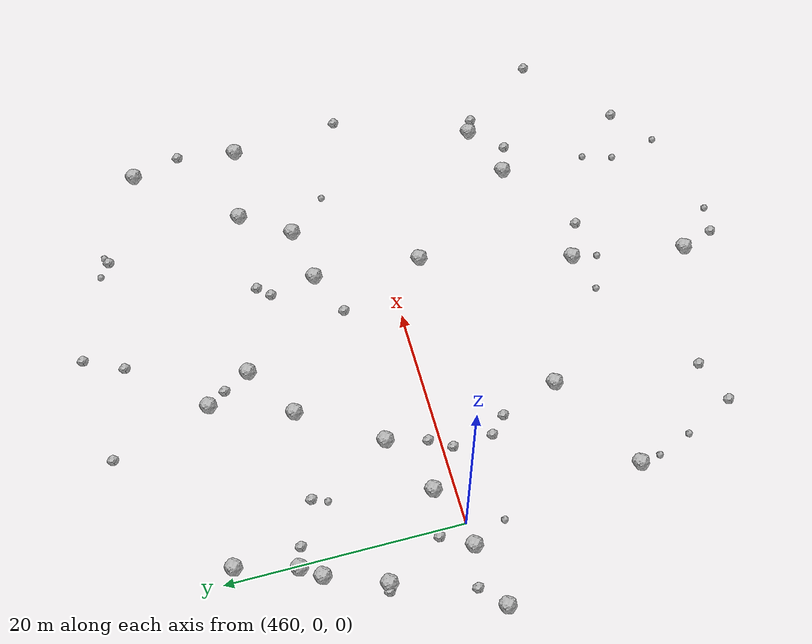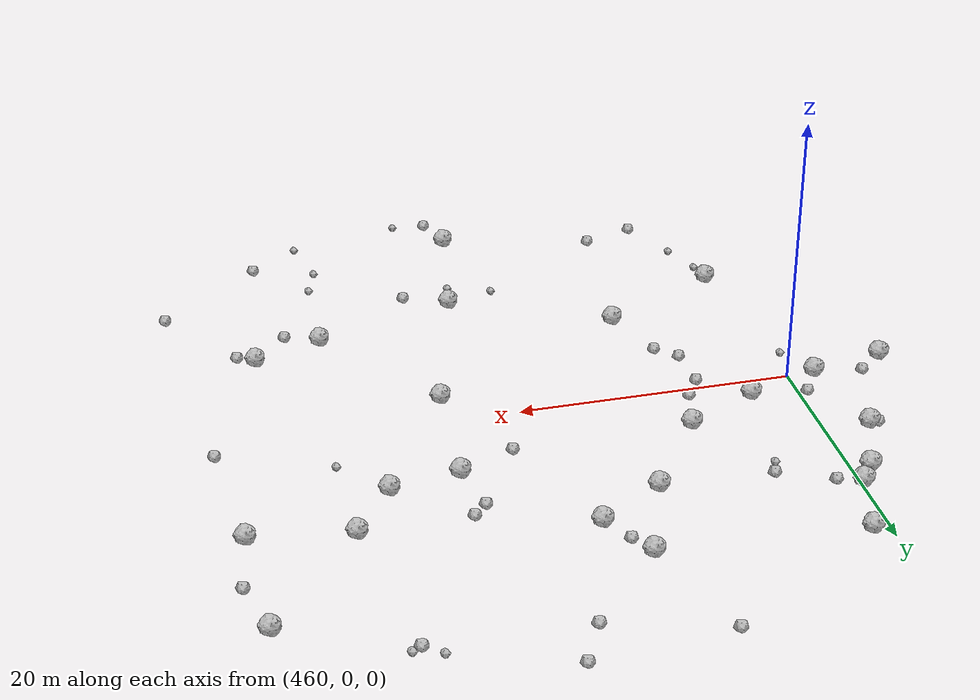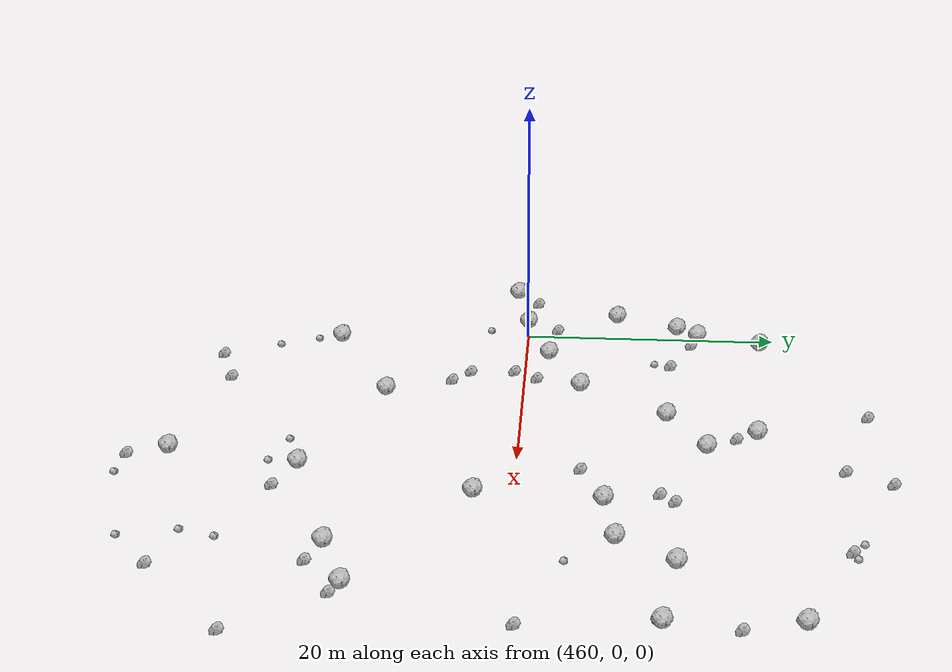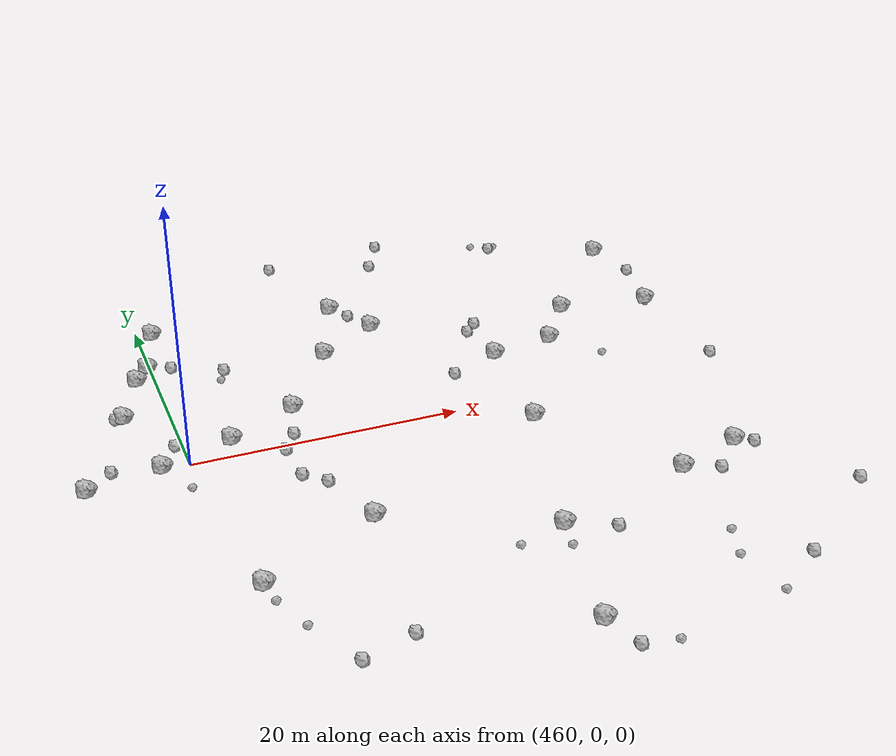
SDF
<sdf version="1.6">
 <world name="default">
  <include><uri>model://sun</uri></include>
  <model name="rock1_12_4">
   <include><uri>model://rock1</uri><pose>456.7264292609069 7.319533454608653 0.5 0 0 0</pose></include>
  </model>
  <model name="rock1_12_5">
   <include><uri>model://rock1</uri><pose>461.19431467303184 18.907294974549657 0.5 0 0 0</pose></include>
  </model>
  <model name="rock1_12_6">
   <include><uri>model://rock1</uri><pose>497.3364417436072 -11.054248393371285 0.5 0 0 0</pose></include>
  </model>
  <model name="rock1_12_7">
   <include><uri>model://rock1</uri><pose>458.04666392362617 -0.040673462632462076 0.5 0 0 0</pose></include>
  </model>
  <model name="rock1_12_8">
   <include><uri>model://rock1</uri><pose>463.5014657104561 1.8291215567332237 0.5 0 0 0</pose></include>
  </model>
  <model name="rock1_12_9">
   <include><uri>model://rock1</uri><pose>500.4168017479779 19.985080734108294 0.5 0 0 0</pose></include>
  </model>
  <model name="rock1_12_10">
   <include><uri>model://rock1</uri><pose>493.65804680320804 11.587392497280597 0.5 0 0 0</pose></include>
  </model>
  <model name="rock1_12_11">
   <include><uri>model://rock1</uri><pose>477.98916279361504 14.123073070528875 0.5 0 0 0</pose></include>
  </model>
  <model name="rock1_12_12">
   <include><uri>model://rock1</uri><pose>452.55646198732245 -1.1325628831853365 0.5 0 0 0</pose></include>
  </model>
  <model name="rock1_12_13">
   <include><uri>model://rock1</uri><pose>500.741585698031 10.50069452122667 0.5 0 0 0</pose></include>
  </model>
  <model name="rock1_12_14">
   <include><uri>model://rock1</uri><pose>470.2347863611097 -10.726118225778112 0.5 0 0 0</pose></include>
  </model>
  <model name="rock1_12_15">
   <include><uri>model://rock1</uri><pose>492.310026576079 -12.866408451020554 0.5 0 0 0</pose></include>
  </model>
  <model name="rock1_12_16">
   <include><uri>model://rock1</uri><pose>481.79483504755626 -16.10667858851373 0.5 0 0 0</pose></include>
  </model>
  <model name="rock1_12_17">
   <include><uri>model://rock1</uri><pose>459.8242630107495 13.883610405256462 0.5 0 0 0</pose></include>
  </model>
  <model name="rock1_12_18">
   <include><uri>model://rock1</uri><pose>473.2498740256 11.17375904245305 0.5 0 0 0</pose></include>
  </model>
  <model name="rock1_12_19">
   <include><uri>model://rock1</uri><pose>485.16273676756776 -2.943442993695477 0.5 0 0 0</pose></include>
  </model>
  <model name="rock1_12_20">
   <include><uri>model://rock1</uri><pose>458.67741860731496 12.244277386075062 0.5 0 0 0</pose></include>
  </model>
  <model name="rock1_12_21">
   <include><uri>model://rock1</uri><pose>468.78966327384165 4.470734326382214 0.5 0 0 0</pose></include>
  </model>
  <model name="rock1_12_22">
   <include><uri>model://rock1</uri><pose>475.7017608929265 18.000453171405972 0.5 0 0 0</pose></include>
  </model>
  <model name="rock1_12_23">
   <include><uri>model://rock1</uri><pose>490.7622322798723 7.331888559732683 0.5 0 0 0</pose></include>
  </model>
  <model name="rock1_12_24">
   <include><uri>model://rock1</uri><pose>461.33801659365815 -15.272621168414622 0.5 0 0 0</pose></include>
  </model>
  <model name="rock1_12_25">
   <include><uri>model://rock1</uri><pose>480.1317027578527 -26.045242297639568 0.5 0 0 0</pose></include>
  </model>
  <model name="rock1_12_26">
   <include><uri>model://rock1</uri><pose>485.7569788582924 6.492822749802407 0.5 0 0 0</pose></include>
  </model>
  <model name="rock2_12_0">
   <include><uri>model://rock2</uri><pose>482.68649928965726 27.513616786530584 0.3 0 0 0</pose></include>
  </model>
  <model name="rock2_12_1">
   <include><uri>model://rock2</uri><pose>461.520811432835 13.357823205556024 0.3 0 0 0</pose></include>
  </model>
  <model name="rock2_12_2">
   <include><uri>model://rock2</uri><pose>465.24694447449616 11.611593857044248 0.3 0 0 0</pose></include>
  </model>
  <model name="rock2_12_3">
   <include><uri>model://rock2</uri><pose>495.75029660715535 -24.593181722883816 0.3 0 0 0</pose></include>
  </model>
  <model name="rock2_12_4">
   <include><uri>model://rock2</uri><pose>501.61642811647476 0.8455183380250944 0.3 0 0 0</pose></include>
  </model>
  <model name="rock2_12_5">
   <include><uri>model://rock2</uri><pose>467.86250957669876 1.0278720403519763 0.3 0 0 0</pose></include>
  </model>
  <model name="rock2_12_6">
   <include><uri>model://rock2</uri><pose>491.8723336405317 23.73314994798306 0.3 0 0 0</pose></include>
  </model>
  <model name="rock2_12_7">
   <include><uri>model://rock2</uri><pose>466.96649362983027 -4.252812385175162 0.3 0 0 0</pose></include>
  </model>
  <model name="rock2_12_8">
   <include><uri>model://rock2</uri><pose>468.7321710918299 -23.166375980802727 0.3 0 0 0</pose></include>
  </model>
  <model name="rock2_12_9">
   <include><uri>model://rock2</uri><pose>472.86344731743947 26.564776148486665 0.3 0 0 0</pose></include>
  </model>
  <model name="rock2_12_10">
   <include><uri>model://rock2</uri><pose>476.7130455099976 16.406440337992066 0.3 0 0 0</pose></include>
  </model>
  <model name="rock2_12_11">
   <include><uri>model://rock2</uri><pose>503.21086575143426 -18.328870464668885 0.3 0 0 0</pose></include>
  </model>
  <model name="rock2_12_12">
   <include><uri>model://rock2</uri><pose>494.78607116530037 -13.792575508186214 0.3 0 0 0</pose></include>
  </model>
  <model name="rock2_12_13">
   <include><uri>model://rock2</uri><pose>456.087157638585 7.4341564692416355 0.3 0 0 0</pose></include>
  </model>
  <model name="rock2_12_14">
   <include><uri>model://rock2</uri><pose>501.5010169368539 15.720751084393072 0.3 0 0 0</pose></include>
  </model>
  <model name="rock2_12_15">
   <include><uri>model://rock2</uri><pose>466.76629153312086 -0.7946949333182438 0.3 0 0 0</pose></include>
  </model>
  <model name="rock2_12_16">
   <include><uri>model://rock2</uri><pose>481.05458318870944 24.1795532807542 0.3 0 0 0</pose></include>
  </model>
  <model name="rock2_12_17">
   <include><uri>model://rock2</uri><pose>468.44462396932965 -5.654476247675614 0.3 0 0 0</pose></include>
  </model>
  <model name="rock2_12_18">
   <include><uri>model://rock2</uri><pose>459.4355609273776 2.443811430326612 0.3 0 0 0</pose></include>
  </model>
  <model name="rock2_12_19">
   <include><uri>model://rock2</uri><pose>485.9011957359636 11.630793855911364 0.3 0 0 0</pose></include>
  </model>
  <model name="rock2_12_20">
   <include><uri>model://rock2</uri><pose>485.04740135267065 -17.529887768033255 0.3 0 0 0</pose></include>
  </model>
  <model name="rock2_12_21">
   <include><uri>model://rock2</uri><pose>481.7040133990443 4.772223410348083 0.3 0 0 0</pose></include>
  </model>
  <model name="rock2_12_22">
   <include><uri>model://rock2</uri><pose>464.90173729869315 -24.40404901977375 0.3 0 0 0</pose></include>
  </model>
  <model name="rock2_12_23">
   <include><uri>model://rock2</uri><pose>481.1313323034282 -28.964643999912344 0.3 0 0 0</pose></include>
  </model>
  <model name="rock2_12_24">
   <include><uri>model://rock2</uri><pose>454.5397261275836 0.6735905517689176 0.3 0 0 0</pose></include>
  </model>
  <model name="rock2_12_25">
   <include><uri>model://rock2</uri><pose>484.9146450935611 10.562259077752856 0.3 0 0 0</pose></include>
  </model>
  <model name="rock2_12_26">
   <include><uri>model://rock2</uri><pose>498.5791632585742 -11.668937046775302 0.3 0 0 0</pose></include>
  </model>
  <model name="rock3_12_0">
   <include><uri>model://rock3</uri><pose>464.72066398710336 10.319012342123607 0.2 0 0 0</pose></include>
  </model>
  <model name="rock3_12_1">
   <include><uri>model://rock3</uri><pose>481.34092980160966 -18.36072526230632 0.2 0 0 0</pose></include>
  </model>
  <model name="rock3_12_2">
   <include><uri>model://rock3</uri><pose>491.1306240470382 -23.166951310312978 0.2 0 0 0</pose></include>
  </model>
  <model name="rock3_12_3">
   <include><uri>model://rock3</uri><pose>493.7191862022513 3.872000563917645 0.2 0 0 0</pose></include>
  </model>
  <model name="rock3_12_4">
   <include><uri>model://rock3</uri><pose>478.141379789172 -17.188320605748856 0.2 0 0 0</pose></include>
  </model>
  <model name="rock3_12_5">
   <include><uri>model://rock3</uri><pose>483.60868623387125 -29.39853604578027 0.2 0 0 0</pose></include>
  </model>
  <model name="rock3_12_6">
   <include><uri>model://rock3</uri><pose>492.46721848959004 24.0151798200207 0.2 0 0 0</pose></include>
  </model>
  <model name="rock3_12_7">
   <include><uri>model://rock3</uri><pose>490.5933499151944 24.631755923971625 0.2 0 0 0</pose></include>
  </model>
  <model name="rock3_12_8">
   <include><uri>model://rock3</uri><pose>462.76557786141626 -20.116952791554425 0.2 0 0 0</pose></include>
  </model>
  <model name="rock3_12_9">
   <include><uri>model://rock3</uri><pose>491.91057923982 -20.53928276662693 0.2 0 0 0</pose></include>
  </model>
  <model name="rock3_12_10">
   <include><uri>model://rock3</uri><pose>461.58253693701624 -17.115212771940662 0.2 0 0 0</pose></include>
  </model>
  <model name="rock3_12_11">
   <include><uri>model://rock3</uri><pose>459.4616744252255 -3.0688032914197976 0.2 0 0 0</pose></include>
  </model>
  <model name="rock3_12_12">
   <include><uri>model://rock3</uri><pose>500.54343669303 10.125725155727565 0.2 0 0 0</pose></include>
  </model>
  <model name="rock3_12_13">
   <include><uri>model://rock3</uri><pose>492.06463091924917 -27.447610505150195 0.2 0 0 0</pose></include>
  </model>
 </world>
</sdf>
